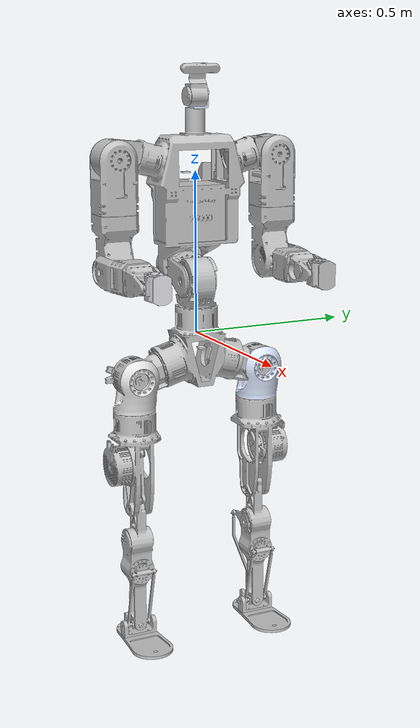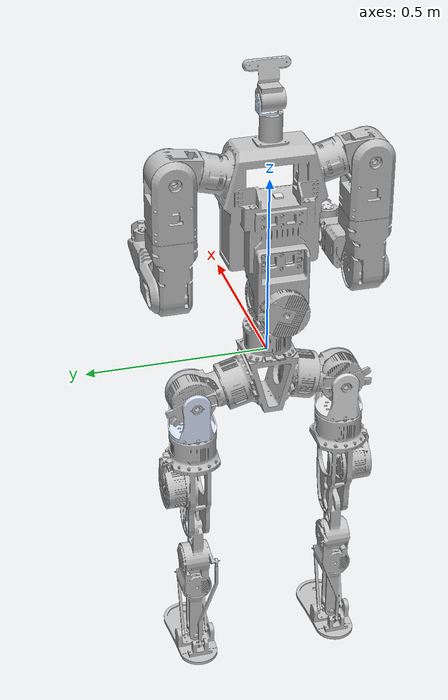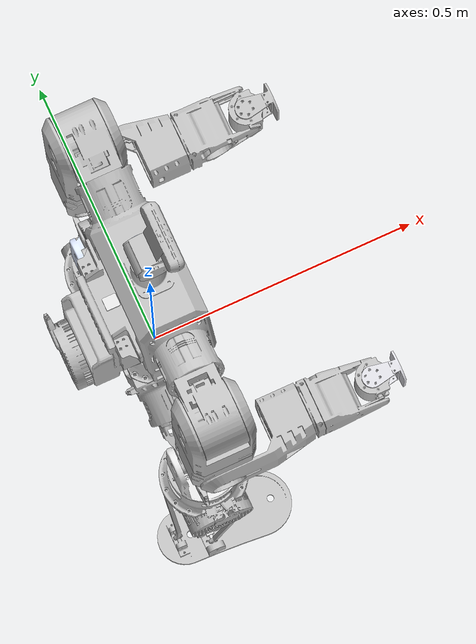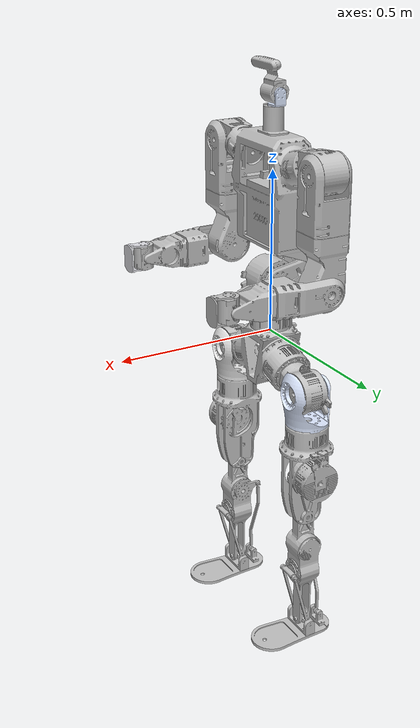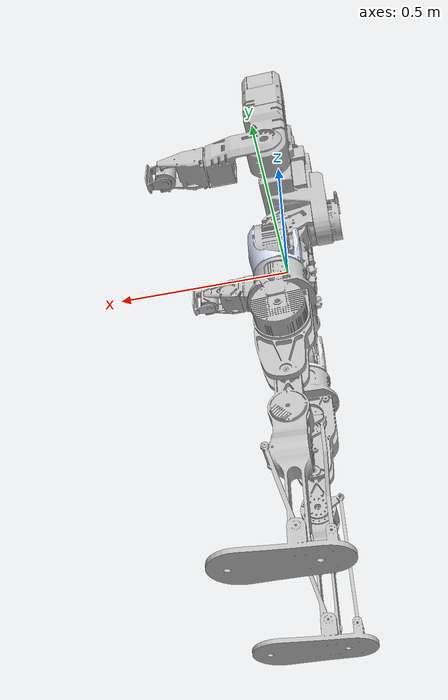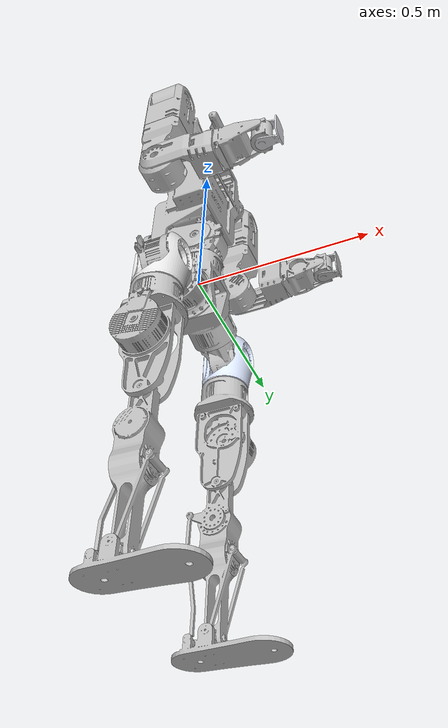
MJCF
<mujoco model="HV1">
  <compiler angle="radian"/>

  <asset>
    <mesh name="pelvis" content_type="model/stl" file="meshes/pelvis.STL"/>
    <mesh name="left_hip_pitch_link" content_type="model/stl" file="meshes/left_hip_pitch_link.STL"/>
    <mesh name="left_hip_roll_link" content_type="model/stl" file="meshes/left_hip_roll_link.STL"/>
    <mesh name="left_hip_yaw_link" content_type="model/stl" file="meshes/left_hip_yaw_link.STL"/>
    <mesh name="left_knee_link" content_type="model/stl" file="meshes/left_knee_link.STL"/>
    <mesh name="left_ankle_roll_link" content_type="model/stl" file="meshes/left_ankle_roll_link.STL"/>
    <mesh name="left_ankle_pitch_link" content_type="model/stl" file="meshes/left_ankle_pitch_link.STL"/>
    <mesh name="right_hip_pitch_link" content_type="model/stl" file="meshes/right_hip_pitch_link.STL"/>
    <mesh name="right_hip_roll_link" content_type="model/stl" file="meshes/right_hip_roll_link.STL"/>
    <mesh name="right_hip_yaw_link" content_type="model/stl" file="meshes/right_hip_yaw_link.STL"/>
    <mesh name="right_knee_link" content_type="model/stl" file="meshes/right_knee_link.STL"/>
    <mesh name="right_ankle_roll_link" content_type="model/stl" file="meshes/right_ankle_roll_link.STL"/>
    <mesh name="right_ankle_pitch_link" content_type="model/stl" file="meshes/right_ankle_pitch_link.STL"/>
    <mesh name="imu_in_pelvis" content_type="model/stl" file="meshes/imu_in_pelvis.STL"/>
    <mesh name="waist_yaw_link" content_type="model/stl" file="meshes/waist_yaw_link.STL"/>
    <mesh name="waist_pitch_link" content_type="model/stl" file="meshes/waist_pitch_link.STL"/>
    <mesh name="torso_link" content_type="model/stl" file="meshes/torso_link.STL"/>
    <mesh name="left_shoulder_pitch_link" content_type="model/stl" file="meshes/left_shoulder_pitch_link.STL"/>
    <mesh name="left_shoulder_roll_link" content_type="model/stl" file="meshes/left_shoulder_roll_link.STL"/>
    <mesh name="left_shoulder_yaw_link" content_type="model/stl" file="meshes/left_shoulder_yaw_link.STL"/>
    <mesh name="left_elbow_link" content_type="model/stl" file="meshes/left_elbow_link.STL"/>
    <mesh name="left_wrist_roll_link" content_type="model/stl" file="meshes/left_wrist_roll_link.STL"/>
    <mesh name="left_wrist_pitch_link" content_type="model/stl" file="meshes/left_wrist_pitch_link.STL"/>
    <mesh name="left_wrist_yaw_link" content_type="model/stl" file="meshes/left_wrist_yaw_link.STL"/>
    <mesh name="right_shoulder_pitch_link" content_type="model/stl" file="meshes/right_shoulder_pitch_link.STL"/>
    <mesh name="right_shoulder_roll_link" content_type="model/stl" file="meshes/right_shoulder_roll_link.STL"/>
    <mesh name="right_shoulder_yaw_link" content_type="model/stl" file="meshes/right_shoulder_yaw_link.STL"/>
    <mesh name="right_elbow_link" content_type="model/stl" file="meshes/right_elbow_link.STL"/>
    <mesh name="right_wrist_roll_link" content_type="model/stl" file="meshes/right_wrist_roll_link.STL"/>
    <mesh name="right_wrist_pitch_link" content_type="model/stl" file="meshes/right_wrist_pitch_link.STL"/>
    <mesh name="right_wrist_yaw_link" content_type="model/stl" file="meshes/right_wrist_yaw_link.STL"/>
    <mesh name="neck_yaw_link" content_type="model/stl" file="meshes/neck_yaw_link.STL"/>
    <mesh name="neck_pitch_link" content_type="model/stl" file="meshes/neck_pitch_link.STL"/>
    <mesh name="imu_in_torso" content_type="model/stl" file="meshes/imu_in_torso.STL"/>
  </asset>

  <worldbody>
    <geom type="mesh" rgba="0.752941 0.752941 0.752941 1" mesh="pelvis"/>
    <geom pos="0.0343 0 -0.042735" quat="1 0 0 0" type="mesh" rgba="0.894118 0.894118 0.894118 1" mesh="imu_in_pelvis"/>
    <body name="left_hip_pitch_link" pos="0 0.13208 -0.10265">
      <inertial pos="0.00483274 0.0704971 -0.0195285" quat="0.78602 0.614887 -0.051529 -0.037835" mass="3.0167" diaginertia="0.00543229 0.00403479 0.00381494"/>
      <joint name="left_hip_pitch_joint" pos="0 0 0" axis="0 0.965926 0.258819" range="-3.14 2.5" actuatorfrcrange="-85 85"/>
      <geom type="mesh" rgba="0.752941 0.752941 0.752941 1" mesh="left_hip_pitch_link"/>
      <body name="left_hip_roll_link" pos="0.0485 0.079206 -0.021223">
        <inertial pos="-0.0365728 0.000249622 -0.0546008" quat="0.980258 -0.00304566 0.197697 0.000859755" mass="0.776313" diaginertia="0.00293913 0.00254554 0.00119342"/>
        <joint name="left_hip_roll_joint" pos="0 0 0" axis="1 0 0" range="-0.43 3.14" actuatorfrcrange="-85 85"/>
        <geom type="mesh" rgba="0.866667 0.909804 1 1" mesh="left_hip_roll_link"/>
        <body name="left_hip_yaw_link" pos="-0.052 0 -0.106">
          <inertial pos="0.000366468 0.0175814 -0.1195" quat="0.701261 0.0220365 -0.00737475 0.712526" mass="6.72716" diaginertia="0.0182557 0.0153229 0.0112839"/>
          <joint name="left_hip_yaw_joint" pos="0 0 0" axis="0 0 1" range="-2.67 2.67" actuatorfrcrange="-85 85"/>
          <geom type="mesh" rgba="0.752941 0.752941 0.752941 1" mesh="left_hip_yaw_link"/>
          <body name="left_knee_link" pos="0 -0.0065 -0.3205">
            <inertial pos="0.00322132 0.00169505 -0.167878" quat="0.633562 0.0101238 -0.00733655 0.773591" mass="4.09904" diaginertia="0.0184953 0.0183524 0.00245948"/>
            <joint name="left_knee_joint" pos="0 0 0" axis="0 1 0" range="-0.26 2.18" actuatorfrcrange="-85 85"/>
            <geom type="mesh" rgba="0.752941 0.752941 0.752941 1" mesh="left_knee_link"/>
            <body name="left_ankle_roll_link" pos="0 0.0065 -0.392">
              <inertial pos="8.95514e-06 0 0" quat="0.5 0.5 -0.5 0.5" mass="0.0154781" diaginertia="4.81146e-06 4.4609e-06 8.20118e-07"/>
              <joint name="left_ankle_roll_joint" pos="0 0 0" axis="1 0 0" range="-0.26 0.26" actuatorfrcrange="-20 20"/>
              <geom type="mesh" rgba="0.894118 0.894118 0.894118 1" mesh="left_ankle_roll_link"/>
              <body name="left_ankle_pitch_link">
                <inertial pos="0.0196301 -2.67911e-06 -0.0348675" quat="-7.97636e-06 0.709256 7.92795e-06 0.704951" mass="0.903664" diaginertia="0.00482039 0.00381196 0.00110912"/>
                <joint name="left_ankle_pitch_joint" pos="0 0 0" axis="0 1 0" range="-0.82 0.58" actuatorfrcrange="-20 20"/>
                <geom type="mesh" rgba="0.752941 0.752941 0.752941 1" mesh="left_ankle_pitch_link"/>
              </body>
            </body>
          </body>
        </body>
      </body>
    </body>
    <body name="right_hip_pitch_link" pos="0 -0.13208 -0.10265">
      <inertial pos="0.00483272 -0.0705397 -0.0193008" quat="0.675909 0.734067 0.0267163 0.0598248" mass="3.01669" diaginertia="0.00543333 0.00403538 0.00381341"/>
      <joint name="right_hip_pitch_joint" pos="0 0 0" axis="0 0.965926 0.258819" range="-3.14 2.5" actuatorfrcrange="-85 85"/>
      <geom type="mesh" rgba="0.752941 0.752941 0.752941 1" mesh="right_hip_pitch_link"/>
      <body name="right_hip_roll_link" pos="0.0485 -0.079206 -0.021223">
        <inertial pos="-0.0365723 -0.000247812 -0.0546008" quat="0.980258 0.00300383 0.197698 -0.00088811" mass="0.776323" diaginertia="0.00293914 0.00254556 0.00119343"/>
        <joint name="right_hip_roll_joint" pos="0 0 0" axis="1 0 0" range="-3.14 0.43" actuatorfrcrange="-85 85"/>
        <geom type="mesh" rgba="0.894118 0.894118 0.894118 1" mesh="right_hip_roll_link"/>
        <body name="right_hip_yaw_link" pos="-0.052 0 -0.106">
          <inertial pos="0.000282723 -0.017669 -0.118293" quat="0.708894 -0.015184 0.0118055 0.705053" mass="6.72421" diaginertia="0.0182514 0.015368 0.0112394"/>
          <joint name="right_hip_yaw_joint" pos="0 0 0" axis="0 0 1" range="-2.67 2.67" actuatorfrcrange="-85 85"/>
          <geom type="mesh" rgba="0.752941 0.752941 0.752941 1" mesh="right_hip_yaw_link"/>
          <body name="right_knee_link" pos="0 0.0065 -0.3205">
            <inertial pos="0.00321609 -0.00188437 -0.16769" quat="0.748939 -0.00667082 0.0100022 0.66253" mass="4.09903" diaginertia="0.0184981 0.0183598 0.00244914"/>
            <joint name="right_knee_joint" pos="0 0 0" axis="0 1 0" range="-0.26 2.18" actuatorfrcrange="-85 85"/>
            <geom type="mesh" rgba="0.752941 0.752941 0.752941 1" mesh="right_knee_link"/>
            <body name="right_ankle_roll_link" pos="0 -0.0065 -0.392">
              <inertial pos="8.95514e-06 0 0" quat="0.5 0.5 -0.5 0.5" mass="0.0154781" diaginertia="4.81146e-06 4.4609e-06 8.20118e-07"/>
              <joint name="right_ankle_roll_joint" pos="0 0 0" axis="1 0 0" range="-0.26 0.26" actuatorfrcrange="-20 20"/>
              <geom type="mesh" rgba="0.894118 0.894118 0.894118 1" mesh="right_ankle_roll_link"/>
              <body name="right_ankle_pitch_link">
                <inertial pos="0.0196301 -2.67911e-06 -0.0348675" quat="-7.97636e-06 0.709256 7.92795e-06 0.704951" mass="0.903664" diaginertia="0.00482039 0.00381196 0.00110912"/>
                <joint name="right_ankle_pitch_joint" pos="0 0 0" axis="0 1 0" range="-0.82 0.58" actuatorfrcrange="-20 20"/>
                <geom type="mesh" rgba="0.752941 0.752941 0.752941 1" mesh="right_ankle_pitch_link"/>
              </body>
            </body>
          </body>
        </body>
      </body>
    </body>
    <body name="waist_yaw_link" pos="0 0 0.0875">
      <inertial pos="0.00106763 -0.00351212 0.0702907" quat="0.711153 0.0356497 0.0344189 0.701289" mass="3.52405" diaginertia="0.00847798 0.00595924 0.00539317"/>
      <joint name="waist_yaw_joint" pos="0 0 0" axis="0 0 1" range="-3.14 1.57" actuatorfrcrange="-85 85"/>
      <geom type="mesh" rgba="0.752941 0.752941 0.752941 1" mesh="waist_yaw_link"/>
      <body name="waist_pitch_link" pos="0 0.04025 0.0755">
        <inertial pos="-0.108717 -0.0406682 0.0272727" quat="0.91203 0.287754 -0.242748 -0.162704" mass="3.4556" diaginertia="0.00588002 0.0053455 0.00456862"/>
        <joint name="waist_pitch_joint" pos="0 0 0" axis="0 1 0" range="-0.52 0.52" actuatorfrcrange="-85 85"/>
        <geom type="mesh" rgba="0.752941 0.752941 0.752941 1" mesh="waist_pitch_link"/>
        <body name="torso_link" pos="-0.0925 -0.04025 0.03">
          <inertial pos="0.0658056 -0.000104581 0.228454" quat="0.999947 0.00395278 0.00943533 -0.000832899" mass="14.0691" diaginertia="0.0574848 0.0531728 0.0402983"/>
          <joint name="waist_roll_joint" pos="0 0 0" axis="1 0 0" range="-0.52 0.52" actuatorfrcrange="-85 85"/>
          <geom type="mesh" rgba="0.752941 0.752941 0.752941 1" mesh="torso_link"/>
          <geom pos="0.0207 0 0.29526" quat="1 0 0 0" type="mesh" rgba="0.894118 0.894118 0.894118 1" mesh="imu_in_torso"/>
          <body name="left_shoulder_pitch_link" pos="0.0925 0.1869 0.35301">
            <inertial pos="0.000150758 0.0707509 -0.00286616" quat="0.986917 0.161204 -0.000301733 0.00267541" mass="1.96424" diaginertia="0.00249227 0.00216789 0.00169732"/>
            <joint name="left_shoulder_pitch_joint" pos="0 0 0" axis="0 0.965926 0.258819" range="-3.14 1.57" actuatorfrcrange="-43 43"/>
            <geom type="mesh" rgba="0.752941 0.752941 0.752941 1" mesh="left_shoulder_pitch_link"/>
            <body name="left_shoulder_roll_link" pos="0.037988 0.07537 -0.0040807">
              <inertial pos="-0.0396925 0.000466431 -0.109971" quat="0.999993 0.0002161 -0.00359568 -0.000676973" mass="2.473" diaginertia="0.00636281 0.00518225 0.00319655"/>
              <joint name="left_shoulder_roll_joint" pos="0 0 0" axis="1 0 0" range="-0.17 3.25" actuatorfrcrange="-43 43"/>
              <geom type="mesh" rgba="0.752941 0.752941 0.752941 1" mesh="left_shoulder_roll_link"/>
              <body name="left_shoulder_yaw_link" pos="-0.0398 0 -0.169">
                <inertial pos="-0.00198643 0.00117443 -0.125515" quat="0.999974 0.00508104 8.14146e-05 -0.00518414" mass="2.52009" diaginertia="0.00662519 0.00619923 0.00265348"/>
                <joint name="left_shoulder_yaw_joint" pos="0 0 0" axis="0 0 1" range="-3.01 2.66" actuatorfrcrange="-43 43"/>
                <geom type="mesh" rgba="0.752941 0.752941 0.752941 1" mesh="left_shoulder_yaw_link"/>
                <body name="left_elbow_link" pos="0 0.03825 -0.161">
                  <inertial pos="0.119955 -0.0289779 4.4903e-05" quat="0.527393 0.531452 0.46868 0.46878" mass="1.48569" diaginertia="0.00302591 0.00251457 0.00137851"/>
                  <joint name="left_elbow_joint" pos="0 0 0" axis="0 1 0" range="-0.79 3.14" actuatorfrcrange="-43 43"/>
                  <geom type="mesh" rgba="0.752941 0.752941 0.752941 1" mesh="left_elbow_link"/>
                  <body name="left_wrist_roll_link" pos="0.17 -0.03825 0">
                    <inertial pos="0.0408022 0.0053213 0.000180153" quat="0.260818 0.656732 -0.230306 0.669056" mass="0.519866" diaginertia="0.000563482 0.000511851 0.000444086"/>
                    <joint name="left_wrist_roll_joint" pos="0 0 0" axis="1 0 0" range="-2.97 2.97" actuatorfrcrange="-20 20"/>
                    <geom type="mesh" rgba="0.752941 0.752941 0.752941 1" mesh="left_wrist_roll_link"/>
                    <body name="left_wrist_pitch_link" pos="0.129 0.044 0">
                      <inertial pos="0.000242638 -0.044818 -0.000392583" quat="0.708336 0.705021 0.0077674 0.0338435" mass="0.20994" diaginertia="0.00015074 0.000144851 0.000119176"/>
                      <joint name="left_wrist_pitch_joint" pos="0 0 0" axis="0 1 0" range="-0.47 0.47" actuatorfrcrange="-10.5 10.5"/>
                      <geom type="mesh" rgba="0.752941 0.752941 0.752941 1" mesh="left_wrist_pitch_link"/>
                      <body name="left_wrist_yaw_link" pos="0 -0.0445 0.0305">
                        <inertial pos="0.0301222 0 -0.0287392" quat="0.999951 0 0.00993273 0" mass="0.126552" diaginertia="5.82099e-05 5.6808e-05 3.34558e-05"/>
                        <joint name="left_wrist_yaw_joint" pos="0 0 0" axis="0 0 1" range="-1.012 1.012" actuatorfrcrange="-10.5 10.5"/>
                        <geom type="mesh" rgba="0.752941 0.752941 0.752941 1" mesh="left_wrist_yaw_link"/>
                      </body>
                    </body>
                  </body>
                </body>
              </body>
            </body>
          </body>
          <body name="right_shoulder_pitch_link" pos="0.0925 -0.1869 0.35301">
            <inertial pos="0.000150771 -0.0707348 -0.00289051" quat="0.986925 -0.161168 4.82501e-05 -0.00199661" mass="1.96423" diaginertia="0.00249225 0.00216804 0.00169717"/>
            <joint name="right_shoulder_pitch_joint" pos="0 0 0" axis="0 0.965926 0.258819" range="-3.14 1.57" actuatorfrcrange="-43 43"/>
            <geom type="mesh" rgba="0.752941 0.752941 0.752941 1" mesh="right_shoulder_pitch_link"/>
            <body name="right_shoulder_roll_link" pos="0.037988 -0.07537 -0.0040807">
              <inertial pos="-0.0396307 -0.000413646 -0.109971" quat="0.999993 0.000460213 -0.00379218 0.000329633" mass="2.473" diaginertia="0.00636312 0.00518196 0.00319653"/>
              <joint name="right_shoulder_roll_joint" pos="0 0 0" axis="1 0 0" range="-3.25 0.17" actuatorfrcrange="-43 43"/>
              <geom type="mesh" rgba="0.752941 0.752941 0.752941 1" mesh="right_shoulder_roll_link"/>
              <body name="right_shoulder_yaw_link" pos="-0.0398 0 -0.169">
                <inertial pos="-0.00196887 -0.00117442 -0.125533" quat="0.999974 -0.00507061 8.12743e-05 0.00510172" mass="2.52009" diaginertia="0.00662526 0.00619923 0.00265341"/>
                <joint name="right_shoulder_yaw_joint" pos="0 0 0" axis="0 0 1" range="-3.01 2.66" actuatorfrcrange="-43 43"/>
                <geom type="mesh" rgba="0.752941 0.752941 0.752941 1" mesh="right_shoulder_yaw_link"/>
                <body name="right_elbow_link" pos="0 -0.03825 -0.161">
                  <inertial pos="0.119955 0.0289593 -9.97404e-05" quat="0.468406 0.468822 0.528768 0.530289" mass="1.48569" diaginertia="0.00302667 0.00251399 0.00137834"/>
                  <joint name="right_elbow_joint" pos="0 0 0" axis="0 1 0" range="-0.79 3.14" actuatorfrcrange="-43 43"/>
                  <geom type="mesh" rgba="0.752941 0.752941 0.752941 1" mesh="right_elbow_link"/>
                  <body name="right_wrist_roll_link" pos="0.17 0.03825 0">
                    <inertial pos="0.0415453 -0.005343 5.39896e-05" quat="-0.252722 0.657124 0.237704 0.66919" mass="0.519866" diaginertia="0.000563372 0.000511782 0.000444265"/>
                    <joint name="right_wrist_roll_joint" pos="0 0 0" axis="1 0 0" range="-2.97 2.97" actuatorfrcrange="-20 20"/>
                    <geom type="mesh" rgba="0.752941 0.752941 0.752941 1" mesh="right_wrist_roll_link"/>
                    <body name="right_wrist_pitch_link" pos="0.13 -0.0445 0">
                      <inertial pos="0.000165004 0.0449111 -0.000392583" quat="0.710079 0.703347 -0.010577 -0.0312868" mass="0.20994" diaginertia="0.000150903 0.000144856 0.000119008"/>
                      <joint name="right_wrist_pitch_joint" pos="0 0 0" axis="0 1 0" range="-0.47 0.47" actuatorfrcrange="-10.5 10.5"/>
                      <geom type="mesh" rgba="0.752941 0.752941 0.752941 1" mesh="right_wrist_pitch_link"/>
                      <body name="right_wrist_yaw_link" pos="0 0.0445 0.0305">
                        <inertial pos="0.0301222 0 -0.0287392" quat="0.999951 0 0.00993273 0" mass="0.126552" diaginertia="5.82099e-05 5.6808e-05 3.34558e-05"/>
                        <joint name="right_wrist_yaw_joint" pos="0 0 0" axis="0 0 1" range="-1.012 1.012" actuatorfrcrange="-10.5 10.5"/>
                        <geom type="mesh" rgba="0.866667 0.866667 0.890196 1" mesh="right_wrist_yaw_link"/>
                      </body>
                    </body>
                  </body>
                </body>
              </body>
            </body>
          </body>
          <body name="neck_yaw_link" pos="0.0925 0 0.489">
            <inertial pos="0 0.0212651 0.0162389" quat="0.382746 0.923853 0 0" mass="0.0533179" diaginertia="2.68512e-05 2.66715e-05 1.00472e-05"/>
            <joint name="neck_yaw_joint" pos="0 0 0" axis="0 0 1" range="-1.4 1.4" actuatorfrcrange="-10.5 10.5"/>
            <geom type="mesh" rgba="0.866667 0.909804 1 1" mesh="neck_yaw_link"/>
            <body name="neck_pitch_link" pos="0 0.03 0.0375">
              <inertial pos="0.0274823 -0.0258209 0.0756767" quat="0.702266 0.700779 0.0887399 -0.0886304" mass="2.44042" diaginertia="0.00279441 0.00274641 0.000384701"/>
              <joint name="neck_pitch_joint" pos="0 0 0" axis="0 1 0" range="-1.05 1.05" actuatorfrcrange="-10.5 10.5"/>
              <geom type="mesh" rgba="0.752941 0.752941 0.752941 1" mesh="neck_pitch_link"/>
            </body>
          </body>
        </body>
      </body>
    </body>
  </worldbody>
</mujoco>
